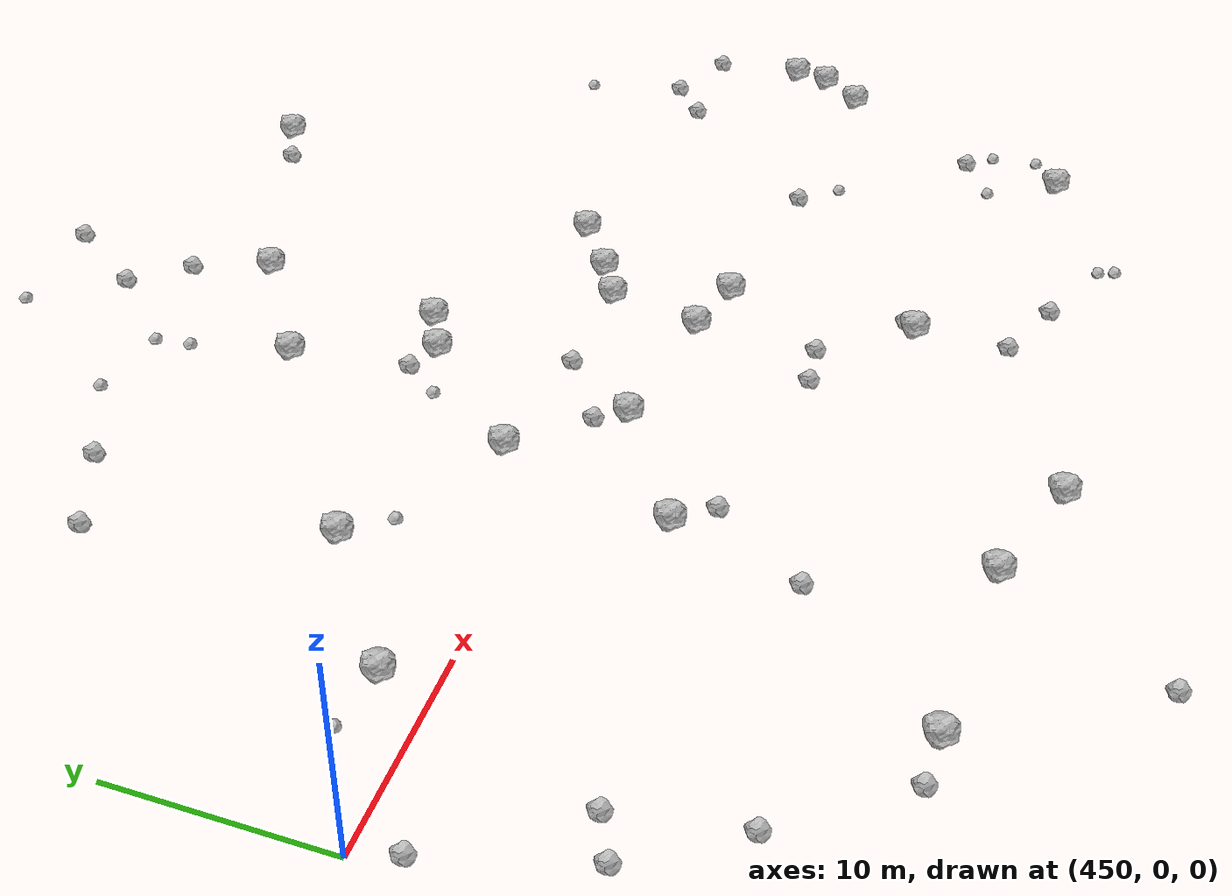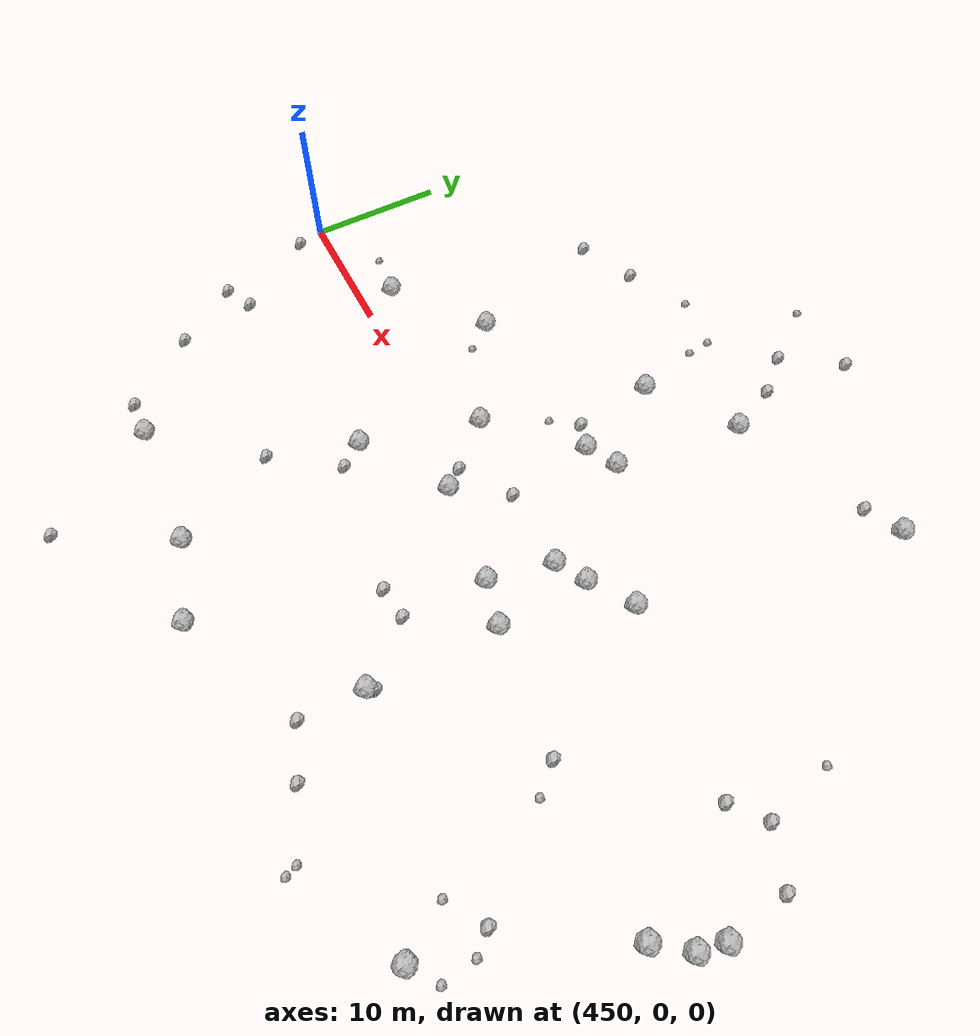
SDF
<sdf version="1.6">
 <world name="default">
  <include><uri>model://sun</uri></include>
  <model name="rock1_12_4">
   <include><uri>model://rock1</uri><pose>490.1246918093063 5.112726376353216 0.5 0 0 0</pose></include>
  </model>
  <model name="rock1_12_5">
   <include><uri>model://rock1</uri><pose>493.7073356759089 23.828318122749266 0.5 0 0 0</pose></include>
  </model>
  <model name="rock1_12_6">
   <include><uri>model://rock1</uri><pose>472.64637394192766 2.854284974495485 0.5 0 0 0</pose></include>
  </model>
  <model name="rock1_12_7">
   <include><uri>model://rock1</uri><pose>477.8798765492782 -21.10743284888959 0.5 0 0 0</pose></include>
  </model>
  <model name="rock1_12_8">
   <include><uri>model://rock1</uri><pose>462.6389005142512 -18.722415689078673 0.5 0 0 0</pose></include>
  </model>
  <model name="rock1_12_9">
   <include><uri>model://rock1</uri><pose>475.57078080749886 14.891694770595905 0.5 0 0 0</pose></include>
  </model>
  <model name="rock1_12_10">
   <include><uri>model://rock1</uri><pose>470.4544491973899 -5.598250625227447 0.5 0 0 0</pose></include>
  </model>
  <model name="rock1_12_11">
   <include><uri>model://rock1</uri><pose>487.32948588025124 -3.404994567171318 0.5 0 0 0</pose></include>
  </model>
  <model name="rock1_12_12">
   <include><uri>model://rock1</uri><pose>481.56549894760394 18.973590160624738 0.5 0 0 0</pose></include>
  </model>
  <model name="rock1_12_13">
   <include><uri>model://rock1</uri><pose>509.5028187689284 -1.064440902489121 0.5 0 0 0</pose></include>
  </model>
  <model name="rock1_12_14">
   <include><uri>model://rock1</uri><pose>509.1246762965234 -2.8699431269338085 0.5 0 0 0</pose></include>
  </model>
  <model name="rock1_12_15">
   <include><uri>model://rock1</uri><pose>458.4431107437975 2.483343804422489 0.5 0 0 0</pose></include>
  </model>
  <model name="rock1_12_16">
   <include><uri>model://rock1</uri><pose>485.0507416611807 1.9816522901210973 0.5 0 0 0</pose></include>
  </model>
  <model name="rock1_12_17">
   <include><uri>model://rock1</uri><pose>476.67258143662986 -1.646182261067782 0.5 0 0 0</pose></include>
  </model>
  <model name="rock1_12_18">
   <include><uri>model://rock1</uri><pose>507.5219112495056 -4.962889555253938 0.5 0 0 0</pose></include>
  </model>
  <model name="rock1_12_19">
   <include><uri>model://rock1</uri><pose>478.1448340853953 8.416445854031188 0.5 0 0 0</pose></include>
  </model>
  <model name="rock1_12_20">
   <include><uri>model://rock1</uri><pose>487.2817173970987 -12.613370137225726 0.5 0 0 0</pose></include>
  </model>
  <model name="rock1_12_21">
   <include><uri>model://rock1</uri><pose>472.12682874099255 -19.252132897110595 0.5 0 0 0</pose></include>
  </model>
  <model name="rock1_12_22">
   <include><uri>model://rock1</uri><pose>502.4363807842551 -17.09908958315495 0.5 0 0 0</pose></include>
  </model>
  <model name="rock1_12_23">
   <include><uri>model://rock1</uri><pose>464.95988938260473 7.357817874798336 0.5 0 0 0</pose></include>
  </model>
  <model name="rock1_12_24">
   <include><uri>model://rock1</uri><pose>487.16844982837756 3.149526582295074 0.5 0 0 0</pose></include>
  </model>
  <model name="rock1_12_25">
   <include><uri>model://rock1</uri><pose>484.10061767522217 -2.6079377195270865 0.5 0 0 0</pose></include>
  </model>
  <model name="rock1_12_26">
   <include><uri>model://rock1</uri><pose>480.39426424221097 9.5604451799108 0.5 0 0 0</pose></include>
  </model>
  <model name="rock2_12_0">
   <include><uri>model://rock2</uri><pose>480.60627252150266 29.239133040788374 0.3 0 0 0</pose></include>
  </model>
  <model name="rock2_12_1">
   <include><uri>model://rock2</uri><pose>491.13422547421766 22.676434308398257 0.3 0 0 0</pose></include>
  </model>
  <model name="rock2_12_2">
   <include><uri>model://rock2</uri><pose>471.7357361310787 -7.321010831678649 0.3 0 0 0</pose></include>
  </model>
  <model name="rock2_12_3">
   <include><uri>model://rock2</uri><pose>476.27679364107706 9.10129364211329 0.3 0 0 0</pose></include>
  </model>
  <model name="rock2_12_4">
   <include><uri>model://rock2</uri><pose>505.29524122044893 4.833776906763319 0.3 0 0 0</pose></include>
  </model>
  <model name="rock2_12_5">
   <include><uri>model://rock2</uri><pose>454.8463939515848 -7.876231466906347 0.3 0 0 0</pose></include>
  </model>
  <model name="rock2_12_6">
   <include><uri>model://rock2</uri><pose>483.89914936170527 -8.564497835169512 0.3 0 0 0</pose></include>
  </model>
  <model name="rock2_12_7">
   <include><uri>model://rock2</uri><pose>475.5875616816372 -0.3062634602678358 0.3 0 0 0</pose></include>
  </model>
  <model name="rock2_12_8">
   <include><uri>model://rock2</uri><pose>503.18010384778705 3.132977664131481 0.3 0 0 0</pose></include>
  </model>
  <model name="rock2_12_9">
   <include><uri>model://rock2</uri><pose>481.56664945584134 -8.836163885624543 0.3 0 0 0</pose></include>
  </model>
  <model name="rock2_12_10">
   <include><uri>model://rock2</uri><pose>461.62683318323536 17.878460929770398 0.3 0 0 0</pose></include>
  </model>
  <model name="rock2_12_11">
   <include><uri>model://rock2</uri><pose>479.1762647766718 2.0112524079100282 0.3 0 0 0</pose></include>
  </model>
  <model name="rock2_12_12">
   <include><uri>model://rock2</uri><pose>450.68299145443 -1.9814063260683277 0.3 0 0 0</pose></include>
  </model>
  <model name="rock2_12_13">
   <include><uri>model://rock2</uri><pose>496.3495033444631 -4.522148440279949 0.3 0 0 0</pose></include>
  </model>
  <model name="rock2_12_14">
   <include><uri>model://rock2</uri><pose>467.73664951111573 -26.920888431227525 0.3 0 0 0</pose></include>
  </model>
  <model name="rock2_12_15">
   <include><uri>model://rock2</uri><pose>455.9151308919852 -13.473467973985539 0.3 0 0 0</pose></include>
  </model>
  <model name="rock2_12_16">
   <include><uri>model://rock2</uri><pose>465.78249578501556 19.692970337398485 0.3 0 0 0</pose></include>
  </model>
  <model name="rock2_12_17">
   <include><uri>model://rock2</uri><pose>459.93866857966697 -18.650577146497763 0.3 0 0 0</pose></include>
  </model>
  <model name="rock2_12_18">
   <include><uri>model://rock2</uri><pose>502.78646971392436 -12.250056757527595 0.3 0 0 0</pose></include>
  </model>
  <model name="rock2_12_19">
   <include><uri>model://rock2</uri><pose>490.68983524929445 -18.547937387970162 0.3 0 0 0</pose></include>
  </model>
  <model name="rock2_12_20">
   <include><uri>model://rock2</uri><pose>452.77307552069 -8.888908384294531 0.3 0 0 0</pose></include>
  </model>
  <model name="rock2_12_21">
   <include><uri>model://rock2</uri><pose>487.15138963595575 -17.126271371153543 0.3 0 0 0</pose></include>
  </model>
  <model name="rock2_12_22">
   <include><uri>model://rock2</uri><pose>479.9806429304566 22.614973919175455 0.3 0 0 0</pose></include>
  </model>
  <model name="rock2_12_23">
   <include><uri>model://rock2</uri><pose>468.4722463541143 -11.844563495888686 0.3 0 0 0</pose></include>
  </model>
  <model name="rock2_12_24">
   <include><uri>model://rock2</uri><pose>477.8170291590474 25.15338078255808 0.3 0 0 0</pose></include>
  </model>
  <model name="rock2_12_25">
   <include><uri>model://rock2</uri><pose>487.53971478410097 -12.1129692352701 0.3 0 0 0</pose></include>
  </model>
  <model name="rock2_12_26">
   <include><uri>model://rock2</uri><pose>508.8938960649481 3.316516543066129 0.3 0 0 0</pose></include>
  </model>
  <model name="rock3_12_0">
   <include><uri>model://rock3</uri><pose>500.32442287251007 -13.858521606979195 0.2 0 0 0</pose></include>
  </model>
  <model name="rock3_12_1">
   <include><uri>model://rock3</uri><pose>504.17735566341145 -15.825742560294689 0.2 0 0 0</pose></include>
  </model>
  <model name="rock3_12_2">
   <include><uri>model://rock3</uri><pose>503.8785642505508 -13.540638510169426 0.2 0 0 0</pose></include>
  </model>
  <model name="rock3_12_3">
   <include><uri>model://rock3</uri><pose>474.3203599107965 19.60528066690096 0.2 0 0 0</pose></include>
  </model>
  <model name="rock3_12_4">
   <include><uri>model://rock3</uri><pose>470.1250187927793 21.9753420670718 0.2 0 0 0</pose></include>
  </model>
  <model name="rock3_12_5">
   <include><uri>model://rock3</uri><pose>466.4968793494083 5.390185684249403 0.2 0 0 0</pose></include>
  </model>
  <model name="rock3_12_6">
   <include><uri>model://rock3</uri><pose>504.12446059385763 9.660333415551314 0.2 0 0 0</pose></include>
  </model>
  <model name="rock3_12_7">
   <include><uri>model://rock3</uri><pose>474.86684518198325 29.047917303283846 0.2 0 0 0</pose></include>
  </model>
  <model name="rock3_12_8">
   <include><uri>model://rock3</uri><pose>455.1884657617264 2.8816492605556263 0.2 0 0 0</pose></include>
  </model>
  <model name="rock3_12_9">
   <include><uri>model://rock3</uri><pose>474.86430101603383 7.246952998888595 0.2 0 0 0</pose></include>
  </model>
  <model name="rock3_12_10">
   <include><uri>model://rock3</uri><pose>495.2219520537824 -21.142346592939585 0.2 0 0 0</pose></include>
  </model>
  <model name="rock3_12_11">
   <include><uri>model://rock3</uri><pose>497.9502051460548 -6.352598498801086 0.2 0 0 0</pose></include>
  </model>
  <model name="rock3_12_12">
   <include><uri>model://rock3</uri><pose>474.0976718060789 21.348491431340406 0.2 0 0 0</pose></include>
  </model>
  <model name="rock3_12_13">
   <include><uri>model://rock3</uri><pose>494.9256671330267 -20.35864341776375 0.2 0 0 0</pose></include>
  </model>
 </world>
</sdf>
